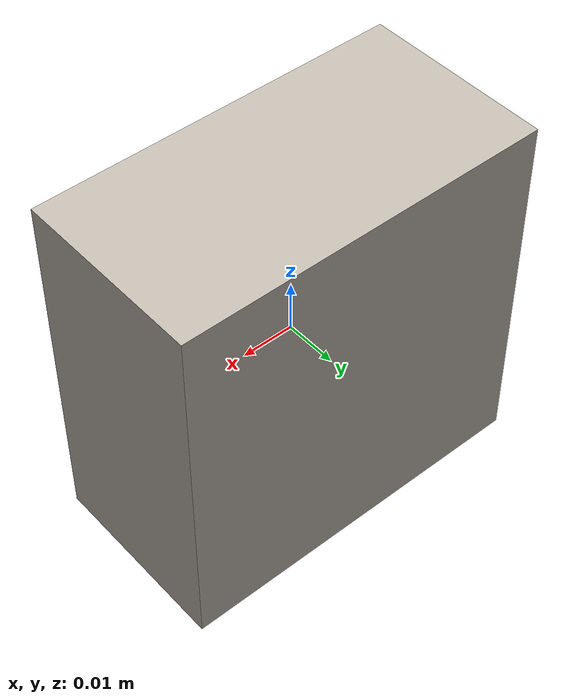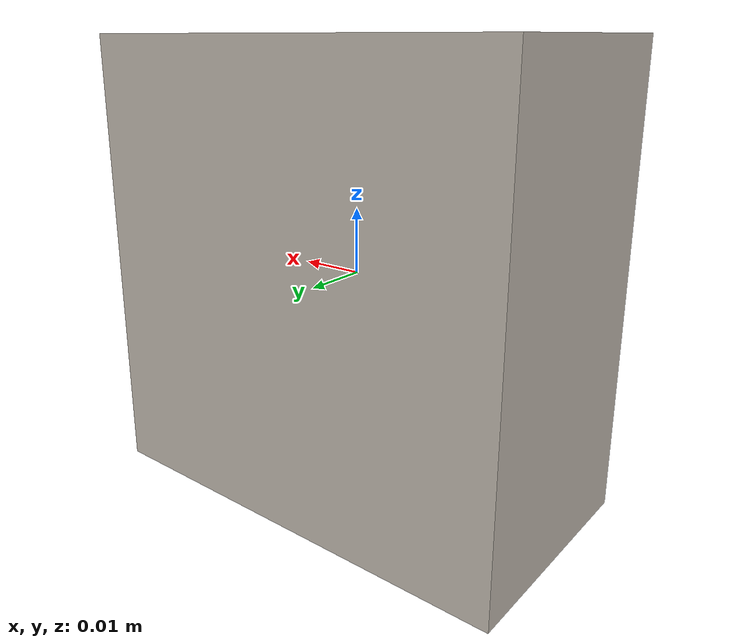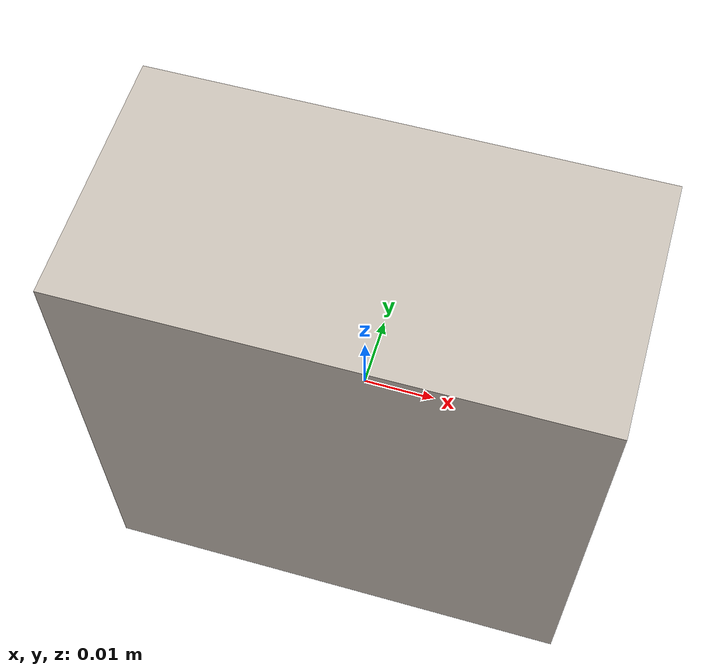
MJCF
<mujoco model="bounce">
  <asset>
    <texture file="textures/boxes/bounce.png" type="2d" name="tex-bounce" />
    <material name="bounce" reflectance="0.7" texrepeat="15 15" texture="tex-bounce" texuniform="true"/>
  </asset>
  <worldbody>
    <body>
      <body name="collision">
        <geom pos="0 0 0" size="0.035 0.018 0.035" type="box" solimp="0.998 0.998 0.001" solref="0.001 1" density="50" friction="0.95 0.3 0.1"  material="bounce" group="1" condim="4"/>
      </body>

      <site rgba="0 0 0 0" size="0.005" pos="0 0 -0.045" name="bottom_site"/>
      <site rgba="0 0 0 0" size="0.005" pos="0 0 0.03" name="top_site"/>
      <site rgba="0 0 0 0" size="0.005" pos="0.06 0.06 0" name="horizontal_radius_site"/>
    </body>
  </worldbody>
</mujoco>
